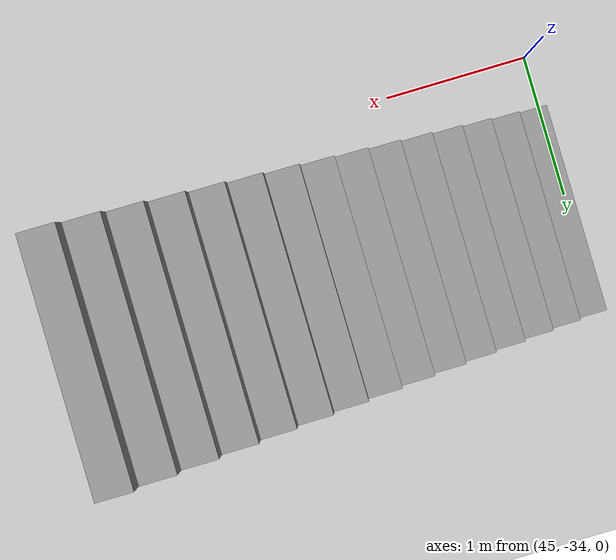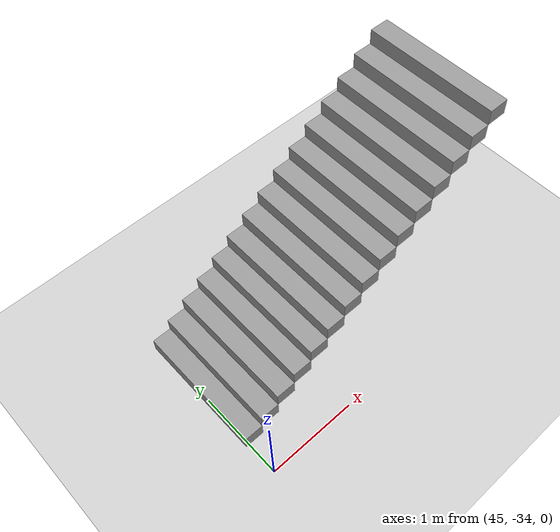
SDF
<sdf version="1.7">
 <world name="default">
  <model name="ground_plane">
   <static>1</static>
   <link name="link">
    <collision name="collision">
     <geometry><plane><normal>0 0 1</normal><size>100 100</size></plane></geometry>
     <surface><friction><ode><mu>100</mu><mu2>50</mu2></ode></friction></surface>
    </collision>
    <visual name="visual">
     <cast_shadows>0</cast_shadows>
     <geometry><plane><normal>0 0 1</normal><size>100 100</size></plane></geometry>
     <material>
      <script><uri>file://media/materials/scripts/gazebo.material</uri><name>Gazebo/Grey</name></script>
     </material>
    </visual>
   </link>
  </model>
  <model name="Anselm_Turmeda">
   <pose>-32.7988 -2.37459 0 0 -0 0</pose>
   <link name="Stairs_1">
    <visual name="Stairs_1_Visual_0">
     <pose>77.8729 -30.5178 0.083333 0 -0 1.5708</pose>
     <geometry><box><size>1.47421 0.215891 0.166667</size></box></geometry>
     <material>
      <script><uri>file://media/materials/scripts/gazebo.material</uri><name>Gazebo/Grey</name></script>
      <ambient>1 1 1 1</ambient>
     </material>
     <meta><layer>0</layer></meta>
    </visual>
    <collision name="Stairs_1_Collision_0">
     <geometry><box><size>1.47421 0.215891 0.166667</size></box></geometry>
     <pose>77.8729 -30.5178 0.083333 0 -0 1.5708</pose>
    </collision>
    <visual name="Stairs_1_Visual_1">
     <pose>78.0888 -30.5178 0.25 0 -0 1.5708</pose>
     <geometry><box><size>1.47421 0.215891 0.166667</size></box></geometry>
     <material>
      <script><uri>file://media/materials/scripts/gazebo.material</uri><name>Gazebo/Grey</name></script>
      <ambient>1 1 1 1</ambient>
     </material>
     <meta><layer>0</layer></meta>
    </visual>
    <collision name="Stairs_1_Collision_1">
     <geometry><box><size>1.47421 0.215891 0.166667</size></box></geometry>
     <pose>78.0888 -30.5178 0.25 0 -0 1.5708</pose>
    </collision>
    <visual name="Stairs_1_Visual_2">
     <pose>78.3047 -30.5178 0.416667 0 -0 1.5708</pose>
     <geometry><box><size>1.47421 0.215891 0.166667</size></box></geometry>
     <material>
      <script><uri>file://media/materials/scripts/gazebo.material</uri><name>Gazebo/Grey</name></script>
      <ambient>1 1 1 1</ambient>
     </material>
     <meta><layer>0</layer></meta>
    </visual>
    <collision name="Stairs_1_Collision_2">
     <geometry><box><size>1.47421 0.215891 0.166667</size></box></geometry>
     <pose>78.3047 -30.5178 0.416667 0 -0 1.5708</pose>
    </collision>
    <visual name="Stairs_1_Visual_3">
     <pose>78.5206 -30.5178 0.583333 0 -0 1.5708</pose>
     <geometry><box><size>1.47421 0.215891 0.166667</size></box></geometry>
     <material>
      <script><uri>file://media/materials/scripts/gazebo.material</uri><name>Gazebo/Grey</name></script>
      <ambient>1 1 1 1</ambient>
     </material>
     <meta><layer>0</layer></meta>
    </visual>
    <collision name="Stairs_1_Collision_3">
     <geometry><box><size>1.47421 0.215891 0.166667</size></box></geometry>
     <pose>78.5206 -30.5178 0.583333 0 -0 1.5708</pose>
    </collision>
    <visual name="Stairs_1_Visual_4">
     <pose>78.7365 -30.5178 0.75 0 -0 1.5708</pose>
     <geometry><box><size>1.47421 0.215891 0.166667</size></box></geometry>
     <material>
      <script><uri>file://media/materials/scripts/gazebo.material</uri><name>Gazebo/Grey</name></script>
      <ambient>1 1 1 1</ambient>
     </material>
     <meta><layer>0</layer></meta>
    </visual>
    <collision name="Stairs_1_Collision_4">
     <geometry><box><size>1.47421 0.215891 0.166667</size></box></geometry>
     <pose>78.7365 -30.5178 0.75 0 -0 1.5708</pose>
    </collision>
    <visual name="Stairs_1_Visual_5">
     <pose>78.9524 -30.5178 0.916667 0 -0 1.5708</pose>
     <geometry><box><size>1.47421 0.215891 0.166667</size></box></geometry>
     <material>
      <script><uri>file://media/materials/scripts/gazebo.material</uri><name>Gazebo/Grey</name></script>
      <ambient>1 1 1 1</ambient>
     </material>
     <meta><layer>0</layer></meta>
    </visual>
    <collision name="Stairs_1_Collision_5">
     <geometry><box><size>1.47421 0.215891 0.166667</size></box></geometry>
     <pose>78.9524 -30.5178 0.916667 0 -0 1.5708</pose>
    </collision>
    <visual name="Stairs_1_Visual_6">
     <pose>79.1683 -30.5178 1.08333 0 -0 1.5708</pose>
     <geometry><box><size>1.47421 0.215891 0.166667</size></box></geometry>
     <material>
      <script><uri>file://media/materials/scripts/gazebo.material</uri><name>Gazebo/Grey</name></script>
      <ambient>1 1 1 1</ambient>
     </material>
     <meta><layer>0</layer></meta>
    </visual>
    <collision name="Stairs_1_Collision_6">
     <geometry><box><size>1.47421 0.215891 0.166667</size></box></geometry>
     <pose>79.1683 -30.5178 1.08333 0 -0 1.5708</pose>
    </collision>
    <visual name="Stairs_1_Visual_7">
     <pose>79.3842 -30.5178 1.25 0 -0 1.5708</pose>
     <geometry><box><size>1.47421 0.215891 0.166667</size></box></geometry>
     <material>
      <script><uri>file://media/materials/scripts/gazebo.material</uri><name>Gazebo/Grey</name></script>
      <ambient>1 1 1 1</ambient>
     </material>
     <meta><layer>0</layer></meta>
    </visual>
    <collision name="Stairs_1_Collision_7">
     <geometry><box><size>1.47421 0.215891 0.166667</size></box></geometry>
     <pose>79.3842 -30.5178 1.25 0 -0 1.5708</pose>
    </collision>
    <visual name="Stairs_1_Visual_8">
     <pose>79.6001 -30.5178 1.41667 0 -0 1.5708</pose>
     <geometry><box><size>1.47421 0.215891 0.166667</size></box></geometry>
     <material>
      <script><uri>file://media/materials/scripts/gazebo.material</uri><name>Gazebo/Grey</name></script>
      <ambient>1 1 1 1</ambient>
     </material>
     <meta><layer>0</layer></meta>
    </visual>
    <collision name="Stairs_1_Collision_8">
     <geometry><box><size>1.47421 0.215891 0.166667</size></box></geometry>
     <pose>79.6001 -30.5178 1.41667 0 -0 1.5708</pose>
    </collision>
    <visual name="Stairs_1_Visual_9">
     <pose>79.816 -30.5178 1.58333 0 -0 1.5708</pose>
     <geometry><box><size>1.47421 0.215891 0.166667</size></box></geometry>
     <material>
      <script><uri>file://media/materials/scripts/gazebo.material</uri><name>Gazebo/Grey</name></script>
      <ambient>1 1 1 1</ambient>
     </material>
     <meta><layer>0</layer></meta>
    </visual>
    <collision name="Stairs_1_Collision_9">
     <geometry><box><size>1.47421 0.215891 0.166667</size></box></geometry>
     <pose>79.816 -30.5178 1.58333 0 -0 1.5708</pose>
    </collision>
    <visual name="Stairs_1_Visual_10">
     <pose>80.0319 -30.5178 1.75 0 -0 1.5708</pose>
     <geometry><box><size>1.47421 0.215891 0.166667</size></box></geometry>
     <material>
      <script><uri>file://media/materials/scripts/gazebo.material</uri><name>Gazebo/Grey</name></script>
      <ambient>1 1 1 1</ambient>
     </material>
     <meta><layer>0</layer></meta>
    </visual>
    <collision name="Stairs_1_Collision_10">
     <geometry><box><size>1.47421 0.215891 0.166667</size></box></geometry>
     <pose>80.0319 -30.5178 1.75 0 -0 1.5708</pose>
    </collision>
    <visual name="Stairs_1_Visual_11">
     <pose>80.2477 -30.5178 1.91667 0 -0 1.5708</pose>
     <geometry><box><size>1.47421 0.215891 0.166667</size></box></geometry>
     <material>
      <script><uri>file://media/materials/scripts/gazebo.material</uri><name>Gazebo/Grey</name></script>
      <ambient>1 1 1 1</ambient>
     </material>
     <meta><layer>0</layer></meta>
    </visual>
    <collision name="Stairs_1_Collision_11">
     <geometry><box><size>1.47421 0.215891 0.166667</size></box></geometry>
     <pose>80.2477 -30.5178 1.91667 0 -0 1.5708</pose>
    </collision>
    <visual name="Stairs_1_Visual_12">
     <pose>80.4636 -30.5178 2.08333 0 -0 1.5708</pose>
     <geometry><box><size>1.47421 0.215891 0.166667</size></box></geometry>
     <material>
      <script><uri>file://media/materials/scripts/gazebo.material</uri><name>Gazebo/Grey</name></script>
      <ambient>1 1 1 1</ambient>
     </material>
     <meta><layer>0</layer></meta>
    </visual>
    <collision name="Stairs_1_Collision_12">
     <geometry><box><size>1.47421 0.215891 0.166667</size></box></geometry>
     <pose>80.4636 -30.5178 2.08333 0 -0 1.5708</pose>
    </collision>
    <visual name="Stairs_1_Visual_13">
     <pose>80.6795 -30.5178 2.25 0 -0 1.5708</pose>
     <geometry><box><size>1.47421 0.215891 0.166667</size></box></geometry>
     <material>
      <script><uri>file://media/materials/scripts/gazebo.material</uri><name>Gazebo/Grey</name></script>
      <ambient>1 1 1 1</ambient>
     </material>
     <meta><layer>0</layer></meta>
    </visual>
    <collision name="Stairs_1_Collision_13">
     <geometry><box><size>1.47421 0.215891 0.166667</size></box></geometry>
     <pose>80.6795 -30.5178 2.25 0 -0 1.5708</pose>
    </collision>
    <visual name="Stairs_1_Visual_14">
     <pose>80.8954 -30.5178 2.41667 0 -0 1.5708</pose>
     <geometry><box><size>1.47421 0.215891 0.166667</size></box></geometry>
     <material>
      <script><uri>file://media/materials/scripts/gazebo.material</uri><name>Gazebo/Grey</name></script>
      <ambient>1 1 1 1</ambient>
     </material>
     <meta><layer>0</layer></meta>
    </visual>
    <collision name="Stairs_1_Collision_14">
     <geometry><box><size>1.47421 0.215891 0.166667</size></box></geometry>
     <pose>80.8954 -30.5178 2.41667 0 -0 1.5708</pose>
    </collision>
   </link>
   <static>1</static>
  </model>
 </world>
</sdf>
